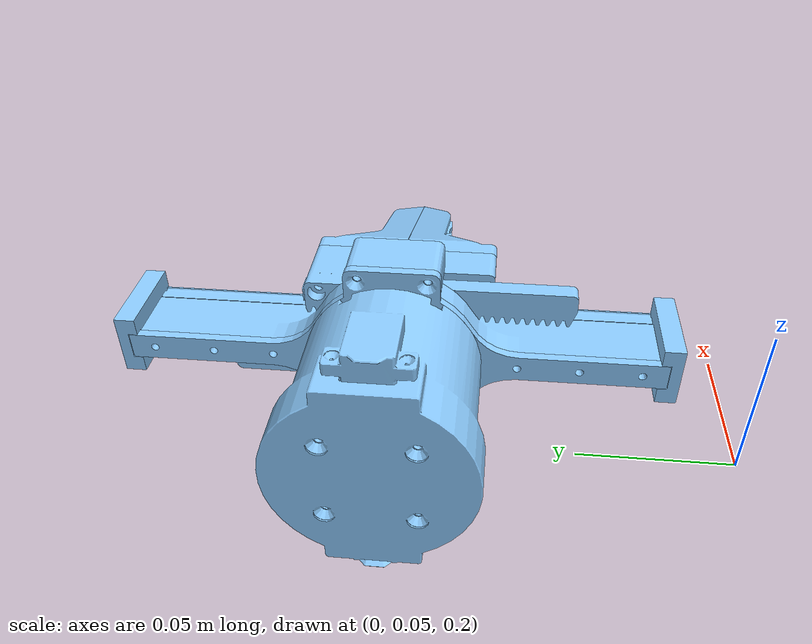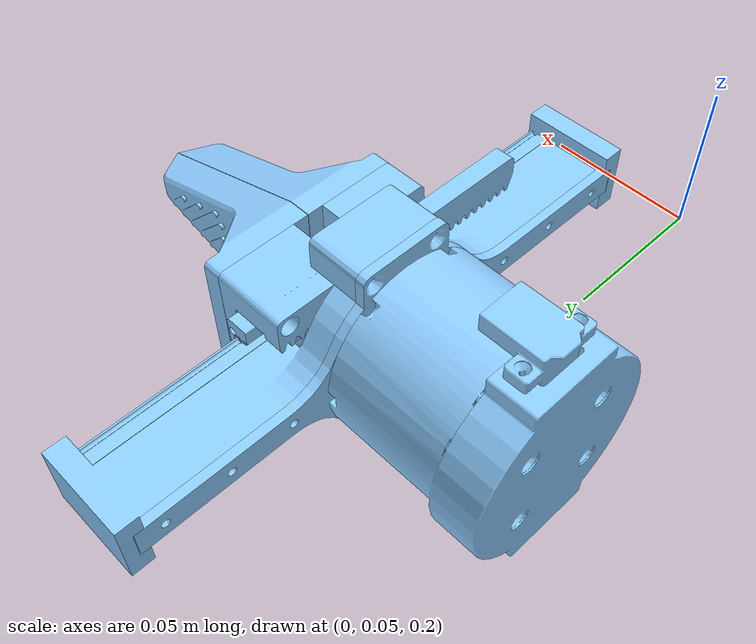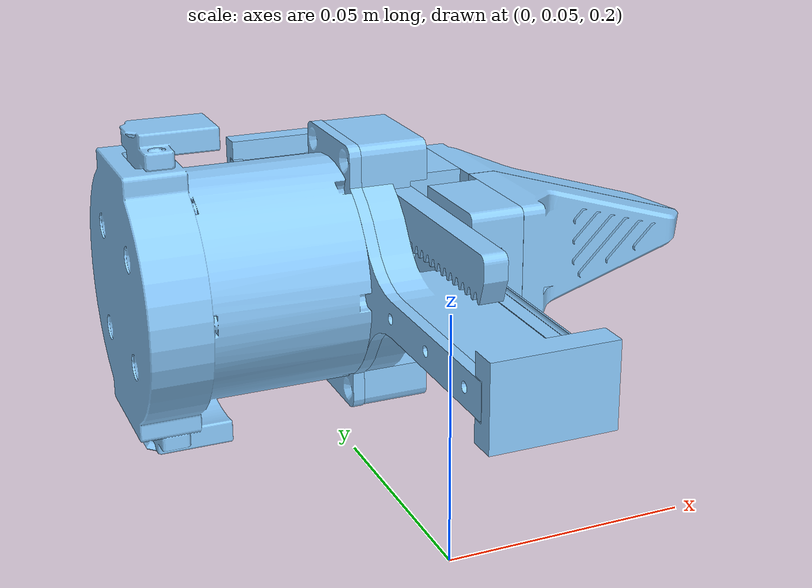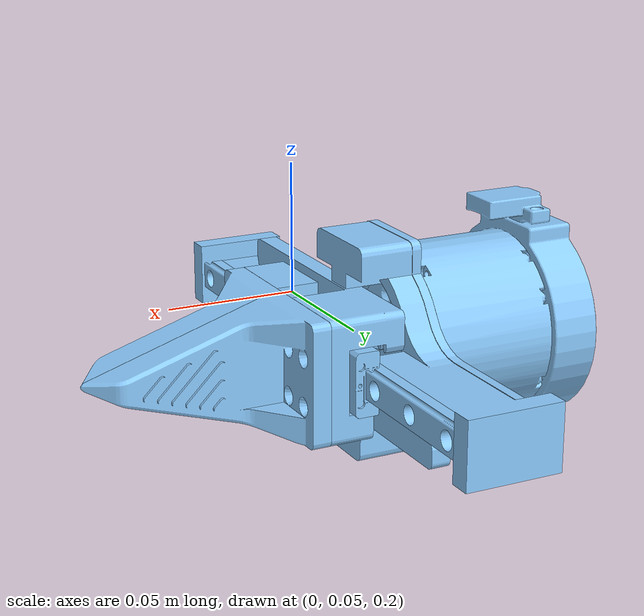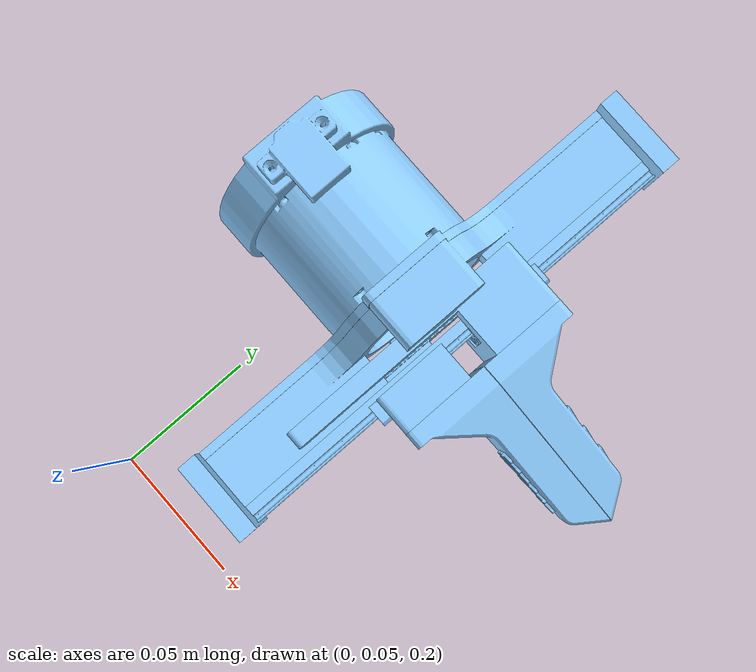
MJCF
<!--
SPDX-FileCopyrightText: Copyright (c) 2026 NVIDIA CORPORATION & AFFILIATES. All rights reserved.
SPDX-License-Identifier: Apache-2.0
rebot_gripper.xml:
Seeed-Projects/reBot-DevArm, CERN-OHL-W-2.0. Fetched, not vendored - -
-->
<?xml version="1.0" encoding="utf-8"?>
<mujoco model="mujoco_xr_rebot_scene">
  <option timestep="0.002"/>

  <visual>
    <headlight ambient="0.4 0.4 0.4" diffuse="0.4 0.4 0.4" specular="0.3 0.3 0.3"/>
  </visual>

  <include file="rebot/rebot_gripper.xml"/>
</mujoco>

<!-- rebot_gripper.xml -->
<mujoco model="rebot devarm gripper ghost">
  <asset>
    <!-- Paths are relative to THIS file's directory; see leader_gripper.xml. -->
    <mesh name="rebot_cover" file="pla7_green.STL"/>
    <mesh name="rebot_rail" file="cnc7.STL"/>
    <mesh name="rebot_motor" file="motor_7.STL"/>
    <mesh name="rebot_jaw_left" file="pla_left.STL"/>
    <mesh name="rebot_finger_left" file="cnc_left.STL"/>
    <mesh name="rebot_jaw_right" file="pla_right.STL"/>
    <mesh name="rebot_finger_right" file="cnc_right.STL"/>
    <material name="rebot_ghost" rgba="0.55 0.80 1.00 1"/>
  </asset>

  <worldbody>
    <body name="rebot_ghost" mocap="true" pos="0.12 0.16 0.22">
      <geom name="rebot_ghost_cover" type="mesh" mesh="rebot_cover"
            material="rebot_ghost" contype="0" conaffinity="0" mass="0" group="2"/>
      <geom name="rebot_ghost_rail" type="mesh" mesh="rebot_rail"
            material="rebot_ghost" contype="0" conaffinity="0" mass="0" group="2"/>
      <!-- The drive motor, and the part the operator's fist is placed on. -->
      <geom name="rebot_ghost_motor" type="mesh" mesh="rebot_motor"
            material="rebot_ghost" contype="0" conaffinity="0" mass="0" group="2"/>
    </body>

    <body name="rebot_ghost_left" mocap="true" pos="0.12 0.16 0.22">
      <geom name="rebot_ghost_jaw_left" type="mesh" mesh="rebot_jaw_left"
            material="rebot_ghost" pos="-0.041939 -0.000073385 0"
            quat="0.5 0.5 -0.5 0.5" contype="0" conaffinity="0" mass="0" group="2"/>
      <geom name="rebot_ghost_finger_left" type="mesh" mesh="rebot_finger_left"
            material="rebot_ghost" pos="-0.041939 -0.000073385 0"
            quat="0.5 0.5 -0.5 0.5" contype="0" conaffinity="0" mass="0" group="2"/>
    </body>

    <body name="rebot_ghost_right" mocap="true" pos="0.12 0.16 0.22">
      <geom name="rebot_ghost_jaw_right" type="mesh" mesh="rebot_jaw_right"
            material="rebot_ghost" pos="-0.041939 0.000073385 0"
            quat="-0.5 0.5 0.5 0.5" contype="0" conaffinity="0" mass="0" group="2"/>
      <geom name="rebot_ghost_finger_right" type="mesh" mesh="rebot_finger_right"
            material="rebot_ghost" pos="-0.041939 0.000073385 0"
            quat="-0.5 0.5 0.5 0.5" contype="0" conaffinity="0" mass="0" group="2"/>
    </body>
  </worldbody>
</mujoco>
